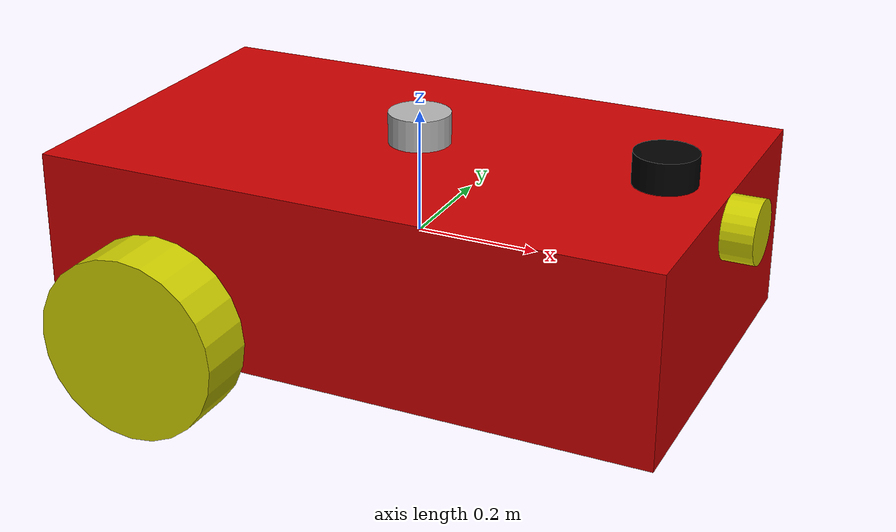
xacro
<?xml version= "1.0"?>
<!--  TWO WHEELED DIFFERENTIAL DRIVE ROBOT -->

<robot name="mapping_bot" xmlns:xacro="http://www.ros.org/wiki/xacro">

<!-- MATERIALS -->

  <material name="black">
    <color rgba="0.0 0.0 0.0 1.0"/>
  </material>

  <material name="blue">
    <color rgba="0.0 0.0 0.8 1.0"/>
  </material>

  <material name="green">
    <color rgba="0.0 0.8 0.0 1.0"/>
  </material>

  <material name="gray">
    <color rgba="0.7 0.7 0.7 1.0"/>
  </material>

  <material name="darkgray">
    <color rgba="0.3 0.3 0.3 1.0"/>
  </material>

  <material name="red">
    <color rgba="0.8 0.0 0.0 1.0"/>
  </material>

  <material name="white">
    <color rgba="1.0 1.0 1.0 1.0"/>
  </material>

  <material name="yellow">
    <color rgba="0.8 0.8 0.0 1.0"/>
  </material>

<!-- DIMENSIONS -->
<xacro:property name= "body_link_x_dim" value = "1.0"/>
<xacro:property name= "body_link_y_dim" value = "0.6"/>
<xacro:property name= "body_link_z_dim" value = "0.3"/>

<xacro:property name= "wheel_link_radius" value = "0.15"/>
<xacro:property name= "wheel_link_length" value = "0.1"/>
<xacro:property name= "wheel_link_z_location" value = "-0.1"/>

<xacro:property name= "sensor_link_radius" value = "0.05"/>
<xacro:property name= "sensor_link_length" value = "0.05"/>

<xacro:property name= "castor_link_radius" value = "0.15"/>
<xacro:property name= "castor_link_z_location" value = "-0.1"/>

<xacro:property name= "body_density" value = "2710.0"/>
<xacro:property name= "wheel_density" value = "2710.0"/>
<xacro:property name= "sensor_density" value = "2710.0"/>
<xacro:property name= "castor_density" value = "2710.0"/>

<xacro:property name= "pi" value = "3.14159265359"/>

<xacro:property name= "body_mass" value = "${body_density*body_link_x_dim*body_link_y_dim*body_link_z_dim}"/>
<xacro:property name= "wheel_mass" value = "${wheel_density*pi*wheel_link_radius*wheel_link_radius*wheel_link_length}"/>
<xacro:property name= "sensor_mass" value = "${sensor_density*pi*sensor_link_radius*sensor_link_radius*sensor_link_length}"/>
<xacro:property name= "castor_mass" value = "${castor_density*(4/3)*pi*castor_link_radius*castor_link_radius*castor_link_radius}"/>

<!-- MI OF WHEEL -->
<xacro:property name= "Iz_wheel" value = "${0.5*wheel_mass*wheel_link_radius*wheel_link_radius}"/>
<xacro:property name= "I_wheel" value = "${(wheel_mass/12.0)*(wheel_link_length*wheel_link_length+3.0*wheel_link_radius*wheel_link_radius)}"/>

<!-- MI OF SENSOR -->
<xacro:property name= "Iz_sensor" value = "${0.5*sensor_mass*sensor_link_radius*sensor_link_radius}"/>
<xacro:property name= "I_sensor" value = "${(sensor_mass/12.0)*(sensor_link_length*sensor_link_length+3.0*sensor_link_radius*sensor_link_radius)}"/>

<!-- MI OF CASTOR WHEEL -->
<xacro:property name= "I_castor" value = "${(2.0/5.0)*castor_mass*castor_link_radius*castor_link_radius}"/>

<!-- inerial properties of the wheel -->
<xacro:macro name= "inertia_wheel">
	<inertial>
	<origin rpy="0 0 0" xyz="0 0 0"/>
	<mass value="${wheel_mass}"/>
	<inertia ixx="${I_wheel}" ixy="0" ixz="0" iyy="${I_wheel}" iyz="0" izz = "${Iz_wheel}" />
	</inertial>
</xacro:macro>

<!-- inerial properties of the sensors -->
<xacro:macro name= "inertia_sensor">
	<inertial>
	<origin rpy="0 0 0" xyz="0 0 0"/>
	<mass value="${sensor_mass}"/>
	<inertia ixx="${I_sensor}" ixy="0" ixz="0" iyy="${I_sensor}" iyz="0" izz = "${Iz_sensor}" />
	</inertial>
</xacro:macro>

<!-- inerial properties of the castor wheel -->
<xacro:macro name= "inertia_castor">
	<inertial>
	<origin rpy="0 0 0" xyz="0 0 0"/>
	<mass value="${castor_mass}"/>
	<inertia ixx="${I_castor}" ixy="0" ixz="0" iyy="${I_castor}" iyz="0" izz = "${I_castor}" />
	</inertial>
</xacro:macro>

<!-- extra files/motion control driver -->
<xacro:include filename = "$(find mapping_bot)/urdf/robot.gazebo" />

<!-- DEFINITION OF LINKS AND JOINTS -->

<!--DUMMY LINK AND JOINT -->
<link name="dummy">
</link>
<joint name="dummy_joint" type ="fixed">
	<parent link ="dummy"/>
	<child link ="body_link"/>
</joint>

<!-- BODY LINK -->
<link name="body_link">
	<visual>
		<geometry>
			<box size="${body_link_x_dim} ${body_link_y_dim} ${body_link_z_dim}" />
		</geometry>
		<origin rpy="0 0 0" xyz = "0 0 0"/>
		<material name="red"/>
	</visual>

	<collision>
		<geometry>
			<box size="${body_link_x_dim} ${body_link_y_dim} ${body_link_z_dim}" />
		</geometry>
		<origin rpy="0 0 0" xyz = "0 0 0"/>
	</collision>

	<inertial>
		<origin rpy="0 0 0" xyz="0 0 0"/>
		<mass value="${body_mass}"/>
	<inertia
	ixx="${(1/12)*body_mass*(body_link_y_dim*body_link_y_dim+body_link_z_dim*body_link_z_dim)}"
	ixy="0"
	ixz="0"
	iyz="0"
	iyy="${(1/12)*body_mass*(body_link_x_dim*body_link_x_dim+body_link_z_dim*body_link_z_dim)}"
	izz="${(1/12)*body_mass*(body_link_y_dim*body_link_y_dim+body_link_x_dim*body_link_x_dim)}" />
	</inertial>

</link>

<!-- END BODY LINK -->

<!-- BACK RIGHT WHEEL LINK AND JOINT -->

<joint name="wheel1_joint" type="continuous">
	<parent link="body_link"/>
	<child link="wheel1_link"/>
	<origin xyz="${-2*wheel_link_radius} ${-body_link_y_dim/2-wheel_link_length/2} ${wheel_link_z_location}" rpy="0 0 0" />
	<axis xyz="0 1 0" />
	<limit effort="1000" velocity="1000"/>
	<dynamics damping="1.0" friction="2.0"/>
</joint>

<link name="wheel1_link">
	<visual>
		<geometry>
			<cylinder length="${wheel_link_length}" radius="${wheel_link_radius}" />
		</geometry>
		<origin rpy="1.57079633 0 0" xyz = "0 0 0"/>
		<material name="yellow"/>
	</visual>

	<collision>
		<geometry>
			<cylinder length="${wheel_link_length}" radius="${wheel_link_radius}" />
		</geometry>
		<origin rpy="1.57079633 0 0" xyz = "0 0 0"/>
	</collision>

	<xacro:inertia_wheel/>
</link>

<!-- BACK LEFT WHEEL LINK AND JOINT -->

<joint name="wheel2_joint" type="continuous">
	<parent link="body_link"/>
	<child link="wheel2_link"/>
	<origin xyz="${-2*wheel_link_radius} ${body_link_y_dim/2+wheel_link_length/2} ${wheel_link_z_location}" rpy="0 0 0" />
	<axis xyz="0 1 0" />
	<limit effort="1000" velocity="1000"/>
	<dynamics damping="1.0" friction="2.0"/>
</joint>

<link name="wheel2_link">
	<visual>
		<geometry>
			<cylinder length="${wheel_link_length}" radius="${wheel_link_radius}" />
		</geometry>
		<origin rpy="1.57079633 0 0" xyz = "0 0 0"/>
		<material name="yellow"/>
	</visual>

	<collision>
		<geometry>
			<cylinder length="${wheel_link_length}" radius="${wheel_link_radius}" />
		</geometry>
		<origin rpy="1.57079633 0 0" xyz = "0 0 0"/>
	</collision>

	<xacro:inertia_wheel />
</link>

<!-- CASTOR WHEEL JOINT AND LINK-->

<joint name="castor_joint" type="fixed">
	<parent link="body_link"/>
	<child link="castor_link"/>
	<origin xyz="${2*castor_link_radius} 0 ${castor_link_z_location}" rpy="0 0 0" />
</joint>

<link name="castor_link">
	<visual>
		<geometry>
			<sphere radius="${castor_link_radius}" />
		</geometry>
		<origin rpy="0 0 0" xyz = "0 0 0"/>
		<material name="blue"/>
	</visual>

	<collision>
		<geometry>
			<sphere radius="${castor_link_radius}" />
		</geometry>
		<origin rpy="0 0 0" xyz = "0 0 0"/>
	</collision>

	<xacro:inertia_castor/>

</link>

<!-- CASTOR LINK END -->

<!-- LASER LINK AND JOINT -->

<joint name="laser_joint" type="fixed">
	<parent link="body_link"/>
	<child link="laser_link"/>
	<origin xyz="0.4 0 ${body_link_z_dim/2 + sensor_link_length/2}" rpy="0 0 0" />
</joint>

<link name="laser_link">
	<visual>
		<geometry>
			<cylinder length="${sensor_link_length}" radius="${sensor_link_radius}" />
		</geometry>
		<origin rpy="0 0 0" xyz = "0 0 0"/>
		<material name="black"/>
	</visual>

	<collision>
		<geometry>
			<cylinder length="${sensor_link_length}" radius="${sensor_link_radius}" />
		</geometry>
		<origin rpy="0 0 0" xyz = "0 0 0"/>
	</collision>

	<xacro:inertia_sensor/>				<!-- this macro is for the wheel. since the laser has different dimensions, it isn't an accurate model. but it works-->
</link>

<!--LASER LINK END-->

<!-- IMU LINK AND JOINT -->

<joint name="imu_joint" type="fixed">
	<parent link="body_link"/>
	<child link="imu_link"/>
	<origin xyz="0 0 ${body_link_z_dim/2 + sensor_link_length/2}" rpy="0 0 0" />
</joint>

<link name="imu_link">
	<visual>
		<geometry>
			<cylinder length="${sensor_link_length}" radius="${sensor_link_radius}" />
		</geometry>
		<origin rpy="0 0 0" xyz = "0 0 0"/>
		<material name="gray"/>
	</visual>

	<collision>
		<geometry>
			<cylinder length="${sensor_link_length}" radius="${sensor_link_radius}" />
		</geometry>
		<origin rpy="0 0 0" xyz = "0 0 0"/>
	</collision>

	<xacro:inertia_sensor/>				<!-- this macro is for the wheel. since the laser has different dimensions, it isn't an accurate model. but it works-->
</link>

<!-- IMU LINK AND JOINT END-->

<!-- CAMERA LINK AND JOINT -->

<joint name="camera_joint" type="fixed">
	<parent link="body_link"/>
	<child link="camera_link"/>
	<origin xyz="${body_link_x_dim/2 + sensor_link_length/2} 0 ${body_link_z_dim/2 - sensor_link_radius}" rpy="0 1.57079 0" />
</joint>

<link name="camera_link">
	<visual>
		<geometry>
			<cylinder length="${sensor_link_length}" radius="${sensor_link_radius}" />
		</geometry>
		<origin rpy="0 0 0" xyz = "0 0 0"/>
		<material name="yellow"/>
	</visual>

	<collision>
		<geometry>
			<cylinder length="${sensor_link_length}" radius="${sensor_link_radius}" />
		</geometry>
		<origin rpy="0 0 0" xyz = "0 0 0"/>
	</collision>

	<xacro:inertia_sensor/>				<!-- this macro is for the wheel. since the laser has different dimensions, it isn't an accurate model. but it works-->
</link>

<!-- CAMERA LINK AND JOINT END-->

<joint name="camera_optical_joint" type="fixed">
	<parent link="camera_link"/>
	<child link="camera_optical_link"/>
	<origin xyz="0 0 0" rpy="-1.57079 -1.57079 1.57079" />
</joint>

<link name="camera_optical_link">
</link>

<joint name="camera_depth_joint" type="fixed">
	<parent link="camera_link"/>
	<child link="camera_depth_link"/>
	<origin xyz="0 0 0" rpy="0 0 -1.5707" />
</joint>

<link name="camera_depth_link">
</link>

<!-- CAMERA LINK AND JOINT END-->
</robot>
